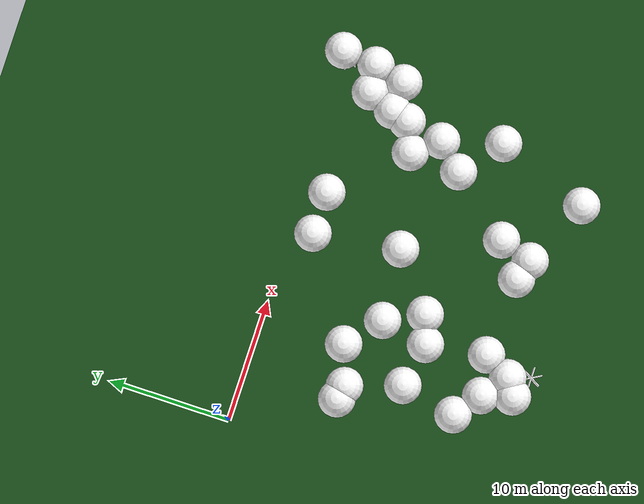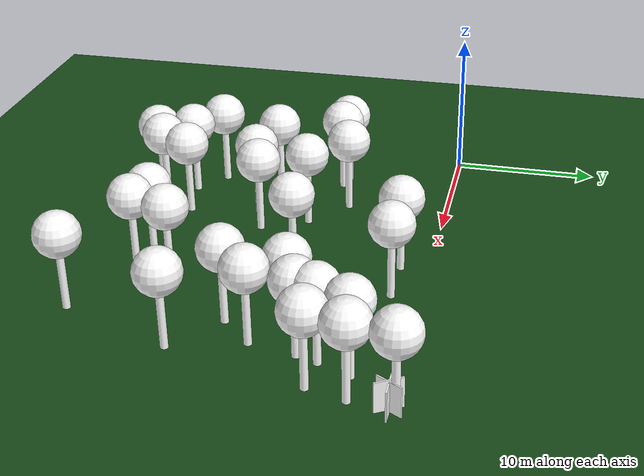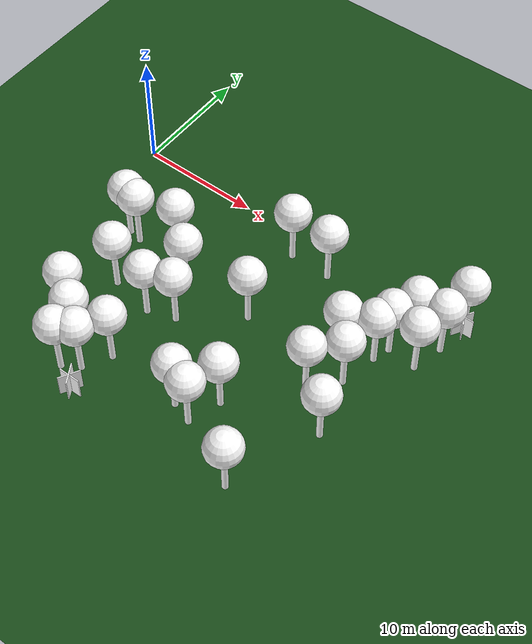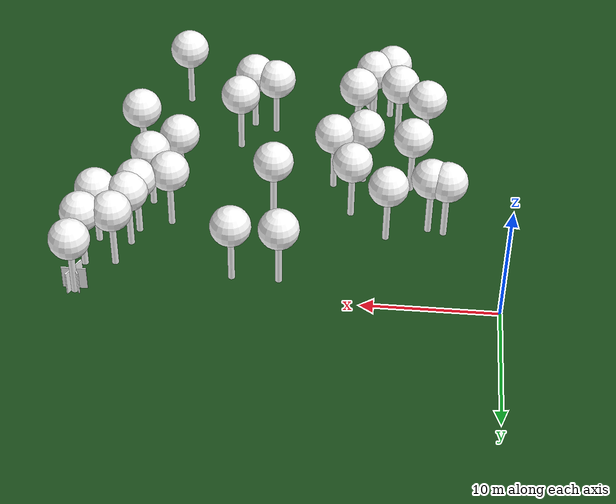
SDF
<sdf version="1.8">
 <world name="forest_world">
  <model name="tree_simple478">
   <static>1</static>
   <link name="link">
    <pose>0 0 0.1 0 -0 0</pose>
    <collision name="collision_trunk">
     <pose>0 0 2 0 -0 0</pose>
     <geometry><cylinder><radius>0.25</radius><length>4</length></cylinder></geometry>
    </collision>
    <collision name="collision_treetop">
     <pose>0 0 5.2 0 -0 0</pose>
     <geometry><sphere><radius>1.5</radius></sphere></geometry>
    </collision>
    <visual name="trunk">
     <pose>0 0 2 0 -0 0</pose>
     <geometry><cylinder><radius>0.25</radius><length>4</length></cylinder></geometry>
     <material>
      <ambient>0.5 0.5 0.5 1</ambient>
      <diffuse>1.0 1.0 1.0 1</diffuse>
      <specular>0.0 0.0 0.0 1</specular>
      <pbr>
       <metal>
        <albedo_map>../worlds/textures/tree_simple_trunk.jpg</albedo_map>
        <metalness>0.0</metalness>
        <roughness>0.8</roughness>
       </metal>
      </pbr>
     </material>
    </visual>
    <visual name="treetop">
     <pose>0 0 5.2 0 -0 0</pose>
     <geometry><sphere><radius>1.5</radius></sphere></geometry>
     <material>
      <ambient>0.5 0.5 0.5 1</ambient>
      <diffuse>1.0 1.0 1.0 1</diffuse>
      <specular>0.0 0.0 0.0 1</specular>
      <pbr>
       <metal>
        <albedo_map>../worlds/textures/tree_simple_treetop.jpg</albedo_map>
        <metalness>0.0</metalness>
        <roughness>0.9</roughness>
       </metal>
      </pbr>
     </material>
    </visual>
   </link>
   <pose>6.74093075138 -12.3162984353 0 0 -0 0</pose>
  </model>
  <model name="tree_simple463">
   <static>1</static>
   <link name="link">
    <pose>0 0 0.1 0 -0 0</pose>
    <collision name="collision_trunk">
     <pose>0 0 2 0 -0 0</pose>
     <geometry><cylinder><radius>0.25</radius><length>4</length></cylinder></geometry>
    </collision>
    <collision name="collision_treetop">
     <pose>0 0 5.2 0 -0 0</pose>
     <geometry><sphere><radius>1.5</radius></sphere></geometry>
    </collision>
    <visual name="trunk">
     <pose>0 0 2 0 -0 0</pose>
     <geometry><cylinder><radius>0.25</radius><length>4</length></cylinder></geometry>
     <material>
      <ambient>0.5 0.5 0.5 1</ambient>
      <diffuse>1.0 1.0 1.0 1</diffuse>
      <specular>0.0 0.0 0.0 1</specular>
      <pbr>
       <metal>
        <albedo_map>../worlds/textures/tree_simple_trunk.jpg</albedo_map>
        <metalness>0.0</metalness>
        <roughness>0.8</roughness>
       </metal>
      </pbr>
     </material>
    </visual>
    <visual name="treetop">
     <pose>0 0 5.2 0 -0 0</pose>
     <geometry><sphere><radius>1.5</radius></sphere></geometry>
     <material>
      <ambient>0.5 0.5 0.5 1</ambient>
      <diffuse>1.0 1.0 1.0 1</diffuse>
      <specular>0.0 0.0 0.0 1</specular>
      <pbr>
       <metal>
        <albedo_map>../worlds/textures/tree_simple_treetop.jpg</albedo_map>
        <metalness>0.0</metalness>
        <roughness>0.9</roughness>
       </metal>
      </pbr>
     </material>
    </visual>
   </link>
   <pose>4.14452898467 -7.71733475474 0 0 -0 0</pose>
  </model>
  <model name="tree_simple439">
   <static>1</static>
   <link name="link">
    <pose>0 0 0.1 0 -0 0</pose>
    <collision name="collision_trunk">
     <pose>0 0 2 0 -0 0</pose>
     <geometry><cylinder><radius>0.25</radius><length>4</length></cylinder></geometry>
    </collision>
    <collision name="collision_treetop">
     <pose>0 0 5.2 0 -0 0</pose>
     <geometry><sphere><radius>1.5</radius></sphere></geometry>
    </collision>
    <visual name="trunk">
     <pose>0 0 2 0 -0 0</pose>
     <geometry><cylinder><radius>0.25</radius><length>4</length></cylinder></geometry>
     <material>
      <ambient>0.5 0.5 0.5 1</ambient>
      <diffuse>1.0 1.0 1.0 1</diffuse>
      <specular>0.0 0.0 0.0 1</specular>
      <pbr>
       <metal>
        <albedo_map>../worlds/textures/tree_simple_trunk.jpg</albedo_map>
        <metalness>0.0</metalness>
        <roughness>0.8</roughness>
       </metal>
      </pbr>
     </material>
    </visual>
    <visual name="treetop">
     <pose>0 0 5.2 0 -0 0</pose>
     <geometry><sphere><radius>1.5</radius></sphere></geometry>
     <material>
      <ambient>0.5 0.5 0.5 1</ambient>
      <diffuse>1.0 1.0 1.0 1</diffuse>
      <specular>0.0 0.0 0.0 1</specular>
      <pbr>
       <metal>
        <albedo_map>../worlds/textures/tree_simple_treetop.jpg</albedo_map>
        <metalness>0.0</metalness>
        <roughness>0.9</roughness>
       </metal>
      </pbr>
     </material>
    </visual>
   </link>
   <pose>8.56501316053 -20.7640585998 0 0 -0 0</pose>
  </model>
  <model name="tree_simple432">
   <static>1</static>
   <link name="link">
    <pose>0 0 0.1 0 -0 0</pose>
    <collision name="collision_trunk">
     <pose>0 0 2 0 -0 0</pose>
     <geometry><cylinder><radius>0.25</radius><length>4</length></cylinder></geometry>
    </collision>
    <collision name="collision_treetop">
     <pose>0 0 5.2 0 -0 0</pose>
     <geometry><sphere><radius>1.5</radius></sphere></geometry>
    </collision>
    <visual name="trunk">
     <pose>0 0 2 0 -0 0</pose>
     <geometry><cylinder><radius>0.25</radius><length>4</length></cylinder></geometry>
     <material>
      <ambient>0.5 0.5 0.5 1</ambient>
      <diffuse>1.0 1.0 1.0 1</diffuse>
      <specular>0.0 0.0 0.0 1</specular>
      <pbr>
       <metal>
        <albedo_map>../worlds/textures/tree_simple_trunk.jpg</albedo_map>
        <metalness>0.0</metalness>
        <roughness>0.8</roughness>
       </metal>
      </pbr>
     </material>
    </visual>
    <visual name="treetop">
     <pose>0 0 5.2 0 -0 0</pose>
     <geometry><sphere><radius>1.5</radius></sphere></geometry>
     <material>
      <ambient>0.5 0.5 0.5 1</ambient>
      <diffuse>1.0 1.0 1.0 1</diffuse>
      <specular>0.0 0.0 0.0 1</specular>
      <pbr>
       <metal>
        <albedo_map>../worlds/textures/tree_simple_treetop.jpg</albedo_map>
        <metalness>0.0</metalness>
        <roughness>0.9</roughness>
       </metal>
      </pbr>
     </material>
    </visual>
   </link>
   <pose>8.39657738542 -6.88848549894 0 0 -0 0</pose>
  </model>
  <model name="tree_simple428">
   <static>1</static>
   <link name="link">
    <pose>0 0 0.1 0 -0 0</pose>
    <collision name="collision_trunk">
     <pose>0 0 2 0 -0 0</pose>
     <geometry><cylinder><radius>0.25</radius><length>4</length></cylinder></geometry>
    </collision>
    <collision name="collision_treetop">
     <pose>0 0 5.2 0 -0 0</pose>
     <geometry><sphere><radius>1.5</radius></sphere></geometry>
    </collision>
    <visual name="trunk">
     <pose>0 0 2 0 -0 0</pose>
     <geometry><cylinder><radius>0.25</radius><length>4</length></cylinder></geometry>
     <material>
      <ambient>0.5 0.5 0.5 1</ambient>
      <diffuse>1.0 1.0 1.0 1</diffuse>
      <specular>0.0 0.0 0.0 1</specular>
      <pbr>
       <metal>
        <albedo_map>../worlds/textures/tree_simple_trunk.jpg</albedo_map>
        <metalness>0.0</metalness>
        <roughness>0.8</roughness>
       </metal>
      </pbr>
     </material>
    </visual>
    <visual name="treetop">
     <pose>0 0 5.2 0 -0 0</pose>
     <geometry><sphere><radius>1.5</radius></sphere></geometry>
     <material>
      <ambient>0.5 0.5 0.5 1</ambient>
      <diffuse>1.0 1.0 1.0 1</diffuse>
      <specular>0.0 0.0 0.0 1</specular>
      <pbr>
       <metal>
        <albedo_map>../worlds/textures/tree_simple_treetop.jpg</albedo_map>
        <metalness>0.0</metalness>
        <roughness>0.9</roughness>
       </metal>
      </pbr>
     </material>
    </visual>
   </link>
   <pose>9.87663766252 -19.9509422297 0 0 -0 0</pose>
  </model>
  <model name="tree_simple394">
   <static>1</static>
   <link name="link">
    <pose>0 0 0.1 0 -0 0</pose>
    <collision name="collision_trunk">
     <pose>0 0 2 0 -0 0</pose>
     <geometry><cylinder><radius>0.25</radius><length>4</length></cylinder></geometry>
    </collision>
    <collision name="collision_treetop">
     <pose>0 0 5.2 0 -0 0</pose>
     <geometry><sphere><radius>1.5</radius></sphere></geometry>
    </collision>
    <visual name="trunk">
     <pose>0 0 2 0 -0 0</pose>
     <geometry><cylinder><radius>0.25</radius><length>4</length></cylinder></geometry>
     <material>
      <ambient>0.5 0.5 0.5 1</ambient>
      <diffuse>1.0 1.0 1.0 1</diffuse>
      <specular>0.0 0.0 0.0 1</specular>
      <pbr>
       <metal>
        <albedo_map>../worlds/textures/tree_simple_trunk.jpg</albedo_map>
        <metalness>0.0</metalness>
        <roughness>0.8</roughness>
       </metal>
      </pbr>
     </material>
    </visual>
    <visual name="treetop">
     <pose>0 0 5.2 0 -0 0</pose>
     <geometry><sphere><radius>1.5</radius></sphere></geometry>
     <material>
      <ambient>0.5 0.5 0.5 1</ambient>
      <diffuse>1.0 1.0 1.0 1</diffuse>
      <specular>0.0 0.0 0.0 1</specular>
      <pbr>
       <metal>
        <albedo_map>../worlds/textures/tree_simple_treetop.jpg</albedo_map>
        <metalness>0.0</metalness>
        <roughness>0.9</roughness>
       </metal>
      </pbr>
     </material>
    </visual>
   </link>
   <pose>26.6658652991 -6.19294115589 0 0 -0 0</pose>
  </model>
  <model name="tree_simple389">
   <static>1</static>
   <link name="link">
    <pose>0 0 0.1 0 -0 0</pose>
    <collision name="collision_trunk">
     <pose>0 0 2 0 -0 0</pose>
     <geometry><cylinder><radius>0.25</radius><length>4</length></cylinder></geometry>
    </collision>
    <collision name="collision_treetop">
     <pose>0 0 5.2 0 -0 0</pose>
     <geometry><sphere><radius>1.5</radius></sphere></geometry>
    </collision>
    <visual name="trunk">
     <pose>0 0 2 0 -0 0</pose>
     <geometry><cylinder><radius>0.25</radius><length>4</length></cylinder></geometry>
     <material>
      <ambient>0.5 0.5 0.5 1</ambient>
      <diffuse>1.0 1.0 1.0 1</diffuse>
      <specular>0.0 0.0 0.0 1</specular>
      <pbr>
       <metal>
        <albedo_map>../worlds/textures/tree_simple_trunk.jpg</albedo_map>
        <metalness>0.0</metalness>
        <roughness>0.8</roughness>
       </metal>
      </pbr>
     </material>
    </visual>
    <visual name="treetop">
     <pose>0 0 5.2 0 -0 0</pose>
     <geometry><sphere><radius>1.5</radius></sphere></geometry>
     <material>
      <ambient>0.5 0.5 0.5 1</ambient>
      <diffuse>1.0 1.0 1.0 1</diffuse>
      <specular>0.0 0.0 0.0 1</specular>
      <pbr>
       <metal>
        <albedo_map>../worlds/textures/tree_simple_treetop.jpg</albedo_map>
        <metalness>0.0</metalness>
        <roughness>0.9</roughness>
       </metal>
      </pbr>
     </material>
    </visual>
   </link>
   <pose>12.5934036343 -12.2598342596 0 0 -0 0</pose>
  </model>
  <model name="tree_simple327">
   <static>1</static>
   <link name="link">
    <pose>0 0 0.1 0 -0 0</pose>
    <collision name="collision_trunk">
     <pose>0 0 2 0 -0 0</pose>
     <geometry><cylinder><radius>0.25</radius><length>4</length></cylinder></geometry>
    </collision>
    <collision name="collision_treetop">
     <pose>0 0 5.2 0 -0 0</pose>
     <geometry><sphere><radius>1.5</radius></sphere></geometry>
    </collision>
    <visual name="trunk">
     <pose>0 0 2 0 -0 0</pose>
     <geometry><cylinder><radius>0.25</radius><length>4</length></cylinder></geometry>
     <material>
      <ambient>0.5 0.5 0.5 1</ambient>
      <diffuse>1.0 1.0 1.0 1</diffuse>
      <specular>0.0 0.0 0.0 1</specular>
      <pbr>
       <metal>
        <albedo_map>../worlds/textures/tree_simple_trunk.jpg</albedo_map>
        <metalness>0.0</metalness>
        <roughness>0.8</roughness>
       </metal>
      </pbr>
     </material>
    </visual>
    <visual name="treetop">
     <pose>0 0 5.2 0 -0 0</pose>
     <geometry><sphere><radius>1.5</radius></sphere></geometry>
     <material>
      <ambient>0.5 0.5 0.5 1</ambient>
      <diffuse>1.0 1.0 1.0 1</diffuse>
      <specular>0.0 0.0 0.0 1</specular>
      <pbr>
       <metal>
        <albedo_map>../worlds/textures/tree_simple_treetop.jpg</albedo_map>
        <metalness>0.0</metalness>
        <roughness>0.9</roughness>
       </metal>
      </pbr>
     </material>
    </visual>
   </link>
   <pose>5.78438571624 -16.7663148306 0 0 -0 0</pose>
  </model>
  <model name="tree_simple316">
   <static>1</static>
   <link name="link">
    <pose>0 0 0.1 0 -0 0</pose>
    <collision name="collision_trunk">
     <pose>0 0 2 0 -0 0</pose>
     <geometry><cylinder><radius>0.25</radius><length>4</length></cylinder></geometry>
    </collision>
    <collision name="collision_treetop">
     <pose>0 0 5.2 0 -0 0</pose>
     <geometry><sphere><radius>1.5</radius></sphere></geometry>
    </collision>
    <visual name="trunk">
     <pose>0 0 2 0 -0 0</pose>
     <geometry><cylinder><radius>0.25</radius><length>4</length></cylinder></geometry>
     <material>
      <ambient>0.5 0.5 0.5 1</ambient>
      <diffuse>1.0 1.0 1.0 1</diffuse>
      <specular>0.0 0.0 0.0 1</specular>
      <pbr>
       <metal>
        <albedo_map>../worlds/textures/tree_simple_trunk.jpg</albedo_map>
        <metalness>0.0</metalness>
        <roughness>0.8</roughness>
       </metal>
      </pbr>
     </material>
    </visual>
    <visual name="treetop">
     <pose>0 0 5.2 0 -0 0</pose>
     <geometry><sphere><radius>1.5</radius></sphere></geometry>
     <material>
      <ambient>0.5 0.5 0.5 1</ambient>
      <diffuse>1.0 1.0 1.0 1</diffuse>
      <specular>0.0 0.0 0.0 1</specular>
      <pbr>
       <metal>
        <albedo_map>../worlds/textures/tree_simple_treetop.jpg</albedo_map>
        <metalness>0.0</metalness>
        <roughness>0.9</roughness>
       </metal>
      </pbr>
     </material>
    </visual>
   </link>
   <pose>19.3529599153 -1.91242662106 0 0 -0 0</pose>
  </model>
  <model name="tree_simple314">
   <static>1</static>
   <link name="link">
    <pose>0 0 0.1 0 -0 0</pose>
    <collision name="collision_trunk">
     <pose>0 0 2 0 -0 0</pose>
     <geometry><cylinder><radius>0.25</radius><length>4</length></cylinder></geometry>
    </collision>
    <collision name="collision_treetop">
     <pose>0 0 5.2 0 -0 0</pose>
     <geometry><sphere><radius>1.5</radius></sphere></geometry>
    </collision>
    <visual name="trunk">
     <pose>0 0 2 0 -0 0</pose>
     <geometry><cylinder><radius>0.25</radius><length>4</length></cylinder></geometry>
     <material>
      <ambient>0.5 0.5 0.5 1</ambient>
      <diffuse>1.0 1.0 1.0 1</diffuse>
      <specular>0.0 0.0 0.0 1</specular>
      <pbr>
       <metal>
        <albedo_map>../worlds/textures/tree_simple_trunk.jpg</albedo_map>
        <metalness>0.0</metalness>
        <roughness>0.8</roughness>
       </metal>
      </pbr>
     </material>
    </visual>
    <visual name="treetop">
     <pose>0 0 5.2 0 -0 0</pose>
     <geometry><sphere><radius>1.5</radius></sphere></geometry>
     <material>
      <ambient>0.5 0.5 0.5 1</ambient>
      <diffuse>1.0 1.0 1.0 1</diffuse>
      <specular>0.0 0.0 0.0 1</specular>
      <pbr>
       <metal>
        <albedo_map>../worlds/textures/tree_simple_treetop.jpg</albedo_map>
        <metalness>0.0</metalness>
        <roughness>0.9</roughness>
       </metal>
      </pbr>
     </material>
    </visual>
   </link>
   <pose>15.9305866253 -1.88175491407 0 0 -0 0</pose>
  </model>
  <model name="tree_simple309">
   <static>1</static>
   <link name="link">
    <pose>0 0 0.1 0 -0 0</pose>
    <collision name="collision_trunk">
     <pose>0 0 2 0 -0 0</pose>
     <geometry><cylinder><radius>0.25</radius><length>4</length></cylinder></geometry>
    </collision>
    <collision name="collision_treetop">
     <pose>0 0 5.2 0 -0 0</pose>
     <geometry><sphere><radius>1.5</radius></sphere></geometry>
    </collision>
    <visual name="trunk">
     <pose>0 0 2 0 -0 0</pose>
     <geometry><cylinder><radius>0.25</radius><length>4</length></cylinder></geometry>
     <material>
      <ambient>0.5 0.5 0.5 1</ambient>
      <diffuse>1.0 1.0 1.0 1</diffuse>
      <specular>0.0 0.0 0.0 1</specular>
      <pbr>
       <metal>
        <albedo_map>../worlds/textures/tree_simple_trunk.jpg</albedo_map>
        <metalness>0.0</metalness>
        <roughness>0.8</roughness>
       </metal>
      </pbr>
     </material>
    </visual>
    <visual name="treetop">
     <pose>0 0 5.2 0 -0 0</pose>
     <geometry><sphere><radius>1.5</radius></sphere></geometry>
     <material>
      <ambient>0.5 0.5 0.5 1</ambient>
      <diffuse>1.0 1.0 1.0 1</diffuse>
      <specular>0.0 0.0 0.0 1</specular>
      <pbr>
       <metal>
        <albedo_map>../worlds/textures/tree_simple_treetop.jpg</albedo_map>
        <metalness>0.0</metalness>
        <roughness>0.9</roughness>
       </metal>
      </pbr>
     </material>
    </visual>
   </link>
   <pose>19.1748935323 -18.8000539767 0 0 -0 0</pose>
  </model>
  <model name="tree_simple301">
   <static>1</static>
   <link name="link">
    <pose>0 0 0.1 0 -0 0</pose>
    <collision name="collision_trunk">
     <pose>0 0 2 0 -0 0</pose>
     <geometry><cylinder><radius>0.25</radius><length>4</length></cylinder></geometry>
    </collision>
    <collision name="collision_treetop">
     <pose>0 0 5.2 0 -0 0</pose>
     <geometry><sphere><radius>1.5</radius></sphere></geometry>
    </collision>
    <visual name="trunk">
     <pose>0 0 2 0 -0 0</pose>
     <geometry><cylinder><radius>0.25</radius><length>4</length></cylinder></geometry>
     <material>
      <ambient>0.5 0.5 0.5 1</ambient>
      <diffuse>1.0 1.0 1.0 1</diffuse>
      <specular>0.0 0.0 0.0 1</specular>
      <pbr>
       <metal>
        <albedo_map>../worlds/textures/tree_simple_trunk.jpg</albedo_map>
        <metalness>0.0</metalness>
        <roughness>0.8</roughness>
       </metal>
      </pbr>
     </material>
    </visual>
    <visual name="treetop">
     <pose>0 0 5.2 0 -0 0</pose>
     <geometry><sphere><radius>1.5</radius></sphere></geometry>
     <material>
      <ambient>0.5 0.5 0.5 1</ambient>
      <diffuse>1.0 1.0 1.0 1</diffuse>
      <specular>0.0 0.0 0.0 1</specular>
      <pbr>
       <metal>
        <albedo_map>../worlds/textures/tree_simple_treetop.jpg</albedo_map>
        <metalness>0.0</metalness>
        <roughness>0.9</roughness>
       </metal>
      </pbr>
     </material>
    </visual>
   </link>
   <pose>27.965012063 -2.69695305694 0 0 -0 0</pose>
  </model>
  <model name="tree_simple292">
   <static>1</static>
   <link name="link">
    <pose>0 0 0.1 0 -0 0</pose>
    <collision name="collision_trunk">
     <pose>0 0 2 0 -0 0</pose>
     <geometry><cylinder><radius>0.25</radius><length>4</length></cylinder></geometry>
    </collision>
    <collision name="collision_treetop">
     <pose>0 0 5.2 0 -0 0</pose>
     <geometry><sphere><radius>1.5</radius></sphere></geometry>
    </collision>
    <visual name="trunk">
     <pose>0 0 2 0 -0 0</pose>
     <geometry><cylinder><radius>0.25</radius><length>4</length></cylinder></geometry>
     <material>
      <ambient>0.5 0.5 0.5 1</ambient>
      <diffuse>1.0 1.0 1.0 1</diffuse>
      <specular>0.0 0.0 0.0 1</specular>
      <pbr>
       <metal>
        <albedo_map>../worlds/textures/tree_simple_trunk.jpg</albedo_map>
        <metalness>0.0</metalness>
        <roughness>0.8</roughness>
       </metal>
      </pbr>
     </material>
    </visual>
    <visual name="treetop">
     <pose>0 0 5.2 0 -0 0</pose>
     <geometry><sphere><radius>1.5</radius></sphere></geometry>
     <material>
      <ambient>0.5 0.5 0.5 1</ambient>
      <diffuse>1.0 1.0 1.0 1</diffuse>
      <specular>0.0 0.0 0.0 1</specular>
      <pbr>
       <metal>
        <albedo_map>../worlds/textures/tree_simple_treetop.jpg</albedo_map>
        <metalness>0.0</metalness>
        <roughness>0.9</roughness>
       </metal>
      </pbr>
     </material>
    </visual>
   </link>
   <pose>16.8917664362 -8.8290409333 0 0 -0 0</pose>
  </model>
  <model name="tree_simple290">
   <static>1</static>
   <link name="link">
    <pose>0 0 0.1 0 -0 0</pose>
    <collision name="collision_trunk">
     <pose>0 0 2 0 -0 0</pose>
     <geometry><cylinder><radius>0.25</radius><length>4</length></cylinder></geometry>
    </collision>
    <collision name="collision_treetop">
     <pose>0 0 5.2 0 -0 0</pose>
     <geometry><sphere><radius>1.5</radius></sphere></geometry>
    </collision>
    <visual name="trunk">
     <pose>0 0 2 0 -0 0</pose>
     <geometry><cylinder><radius>0.25</radius><length>4</length></cylinder></geometry>
     <material>
      <ambient>0.5 0.5 0.5 1</ambient>
      <diffuse>1.0 1.0 1.0 1</diffuse>
      <specular>0.0 0.0 0.0 1</specular>
      <pbr>
       <metal>
        <albedo_map>../worlds/textures/tree_simple_trunk.jpg</albedo_map>
        <metalness>0.0</metalness>
        <roughness>0.8</roughness>
       </metal>
      </pbr>
     </material>
    </visual>
    <visual name="treetop">
     <pose>0 0 5.2 0 -0 0</pose>
     <geometry><sphere><radius>1.5</radius></sphere></geometry>
     <material>
      <ambient>0.5 0.5 0.5 1</ambient>
      <diffuse>1.0 1.0 1.0 1</diffuse>
      <specular>0.0 0.0 0.0 1</specular>
      <pbr>
       <metal>
        <albedo_map>../worlds/textures/tree_simple_treetop.jpg</albedo_map>
        <metalness>0.0</metalness>
        <roughness>0.9</roughness>
       </metal>
      </pbr>
     </material>
    </visual>
   </link>
   <pose>27.3398552582 -13.9618363734 0 0 -0 0</pose>
  </model>
  <model name="tree_simple288">
   <static>1</static>
   <link name="link">
    <pose>0 0 0.1 0 -0 0</pose>
    <collision name="collision_trunk">
     <pose>0 0 2 0 -0 0</pose>
     <geometry><cylinder><radius>0.25</radius><length>4</length></cylinder></geometry>
    </collision>
    <collision name="collision_treetop">
     <pose>0 0 5.2 0 -0 0</pose>
     <geometry><sphere><radius>1.5</radius></sphere></geometry>
    </collision>
    <visual name="trunk">
     <pose>0 0 2 0 -0 0</pose>
     <geometry><cylinder><radius>0.25</radius><length>4</length></cylinder></geometry>
     <material>
      <ambient>0.5 0.5 0.5 1</ambient>
      <diffuse>1.0 1.0 1.0 1</diffuse>
      <specular>0.0 0.0 0.0 1</specular>
      <pbr>
       <metal>
        <albedo_map>../worlds/textures/tree_simple_trunk.jpg</albedo_map>
        <metalness>0.0</metalness>
        <roughness>0.8</roughness>
       </metal>
      </pbr>
     </material>
    </visual>
    <visual name="treetop">
     <pose>0 0 5.2 0 -0 0</pose>
     <geometry><sphere><radius>1.5</radius></sphere></geometry>
     <material>
      <ambient>0.5 0.5 0.5 1</ambient>
      <diffuse>1.0 1.0 1.0 1</diffuse>
      <specular>0.0 0.0 0.0 1</specular>
      <pbr>
       <metal>
        <albedo_map>../worlds/textures/tree_simple_treetop.jpg</albedo_map>
        <metalness>0.0</metalness>
        <roughness>0.9</roughness>
       </metal>
      </pbr>
     </material>
    </visual>
   </link>
   <pose>27.0972467775 -4.81040951666 0 0 -0 0</pose>
  </model>
  <model name="tree_simple267">
   <static>1</static>
   <link name="link">
    <pose>0 0 0.1 0 -0 0</pose>
    <collision name="collision_trunk">
     <pose>0 0 2 0 -0 0</pose>
     <geometry><cylinder><radius>0.25</radius><length>4</length></cylinder></geometry>
    </collision>
    <collision name="collision_treetop">
     <pose>0 0 5.2 0 -0 0</pose>
     <geometry><sphere><radius>1.5</radius></sphere></geometry>
    </collision>
    <visual name="trunk">
     <pose>0 0 2 0 -0 0</pose>
     <geometry><cylinder><radius>0.25</radius><length>4</length></cylinder></geometry>
     <material>
      <ambient>0.5 0.5 0.5 1</ambient>
      <diffuse>1.0 1.0 1.0 1</diffuse>
      <specular>0.0 0.0 0.0 1</specular>
      <pbr>
       <metal>
        <albedo_map>../worlds/textures/tree_simple_trunk.jpg</albedo_map>
        <metalness>0.0</metalness>
        <roughness>0.8</roughness>
       </metal>
      </pbr>
     </material>
    </visual>
    <visual name="treetop">
     <pose>0 0 5.2 0 -0 0</pose>
     <geometry><sphere><radius>1.5</radius></sphere></geometry>
     <material>
      <ambient>0.5 0.5 0.5 1</ambient>
      <diffuse>1.0 1.0 1.0 1</diffuse>
      <specular>0.0 0.0 0.0 1</specular>
      <pbr>
       <metal>
        <albedo_map>../worlds/textures/tree_simple_treetop.jpg</albedo_map>
        <metalness>0.0</metalness>
        <roughness>0.9</roughness>
       </metal>
      </pbr>
     </material>
    </visual>
   </link>
   <pose>26.0311147771 -9.256788114 0 0 -0 0</pose>
  </model>
  <model name="tree_simple211">
   <static>1</static>
   <link name="link">
    <pose>0 0 0.1 0 -0 0</pose>
    <collision name="collision_trunk">
     <pose>0 0 2 0 -0 0</pose>
     <geometry><cylinder><radius>0.25</radius><length>4</length></cylinder></geometry>
    </collision>
    <collision name="collision_treetop">
     <pose>0 0 5.2 0 -0 0</pose>
     <geometry><sphere><radius>1.5</radius></sphere></geometry>
    </collision>
    <visual name="trunk">
     <pose>0 0 2 0 -0 0</pose>
     <geometry><cylinder><radius>0.25</radius><length>4</length></cylinder></geometry>
     <material>
      <ambient>0.5 0.5 0.5 1</ambient>
      <diffuse>1.0 1.0 1.0 1</diffuse>
      <specular>0.0 0.0 0.0 1</specular>
      <pbr>
       <metal>
        <albedo_map>../worlds/textures/tree_simple_trunk.jpg</albedo_map>
        <metalness>0.0</metalness>
        <roughness>0.8</roughness>
       </metal>
      </pbr>
     </material>
    </visual>
    <visual name="treetop">
     <pose>0 0 5.2 0 -0 0</pose>
     <geometry><sphere><radius>1.5</radius></sphere></geometry>
     <material>
      <ambient>0.5 0.5 0.5 1</ambient>
      <diffuse>1.0 1.0 1.0 1</diffuse>
      <specular>0.0 0.0 0.0 1</specular>
      <pbr>
       <metal>
        <albedo_map>../worlds/textures/tree_simple_treetop.jpg</albedo_map>
        <metalness>0.0</metalness>
        <roughness>0.9</roughness>
       </metal>
      </pbr>
     </material>
    </visual>
   </link>
   <pose>24.1088627432 -11.2741546154 0 0 -0 0</pose>
  </model>
  <model name="tree_simple191">
   <static>1</static>
   <link name="link">
    <pose>0 0 0.1 0 -0 0</pose>
    <collision name="collision_trunk">
     <pose>0 0 2 0 -0 0</pose>
     <geometry><cylinder><radius>0.25</radius><length>4</length></cylinder></geometry>
    </collision>
    <collision name="collision_treetop">
     <pose>0 0 5.2 0 -0 0</pose>
     <geometry><sphere><radius>1.5</radius></sphere></geometry>
    </collision>
    <visual name="trunk">
     <pose>0 0 2 0 -0 0</pose>
     <geometry><cylinder><radius>0.25</radius><length>4</length></cylinder></geometry>
     <material>
      <ambient>0.5 0.5 0.5 1</ambient>
      <diffuse>1.0 1.0 1.0 1</diffuse>
      <specular>0.0 0.0 0.0 1</specular>
      <pbr>
       <metal>
        <albedo_map>../worlds/textures/tree_simple_trunk.jpg</albedo_map>
        <metalness>0.0</metalness>
        <roughness>0.8</roughness>
       </metal>
      </pbr>
     </material>
    </visual>
    <visual name="treetop">
     <pose>0 0 5.2 0 -0 0</pose>
     <geometry><sphere><radius>1.5</radius></sphere></geometry>
     <material>
      <ambient>0.5 0.5 0.5 1</ambient>
      <diffuse>1.0 1.0 1.0 1</diffuse>
      <specular>0.0 0.0 0.0 1</specular>
      <pbr>
       <metal>
        <albedo_map>../worlds/textures/tree_simple_treetop.jpg</albedo_map>
        <metalness>0.0</metalness>
        <roughness>0.9</roughness>
       </metal>
      </pbr>
     </material>
    </visual>
   </link>
   <pose>7.88783183775 -18.3803184039 0 0 -0 0</pose>
  </model>
  <model name="tree_simple178">
   <static>1</static>
   <link name="link">
    <pose>0 0 0.1 0 -0 0</pose>
    <collision name="collision_trunk">
     <pose>0 0 2 0 -0 0</pose>
     <geometry><cylinder><radius>0.25</radius><length>4</length></cylinder></geometry>
    </collision>
    <collision name="collision_treetop">
     <pose>0 0 5.2 0 -0 0</pose>
     <geometry><sphere><radius>1.5</radius></sphere></geometry>
    </collision>
    <visual name="trunk">
     <pose>0 0 2 0 -0 0</pose>
     <geometry><cylinder><radius>0.25</radius><length>4</length></cylinder></geometry>
     <material>
      <ambient>0.5 0.5 0.5 1</ambient>
      <diffuse>1.0 1.0 1.0 1</diffuse>
      <specular>0.0 0.0 0.0 1</specular>
      <pbr>
       <metal>
        <albedo_map>../worlds/textures/tree_simple_trunk.jpg</albedo_map>
        <metalness>0.0</metalness>
        <roughness>0.8</roughness>
       </metal>
      </pbr>
     </material>
    </visual>
    <visual name="treetop">
     <pose>0 0 5.2 0 -0 0</pose>
     <geometry><sphere><radius>1.5</radius></sphere></geometry>
     <material>
      <ambient>0.5 0.5 0.5 1</ambient>
      <diffuse>1.0 1.0 1.0 1</diffuse>
      <specular>0.0 0.0 0.0 1</specular>
      <pbr>
       <metal>
        <albedo_map>../worlds/textures/tree_simple_treetop.jpg</albedo_map>
        <metalness>0.0</metalness>
        <roughness>0.9</roughness>
       </metal>
      </pbr>
     </material>
    </visual>
   </link>
   <pose>24.3791750449 -7.18218424398 0 0 -0 0</pose>
  </model>
  <model name="tree_simple157">
   <static>1</static>
   <link name="link">
    <pose>0 0 0.1 0 -0 0</pose>
    <collision name="collision_trunk">
     <pose>0 0 2 0 -0 0</pose>
     <geometry><cylinder><radius>0.25</radius><length>4</length></cylinder></geometry>
    </collision>
    <collision name="collision_treetop">
     <pose>0 0 5.2 0 -0 0</pose>
     <geometry><sphere><radius>1.5</radius></sphere></geometry>
    </collision>
    <visual name="trunk">
     <pose>0 0 2 0 -0 0</pose>
     <geometry><cylinder><radius>0.25</radius><length>4</length></cylinder></geometry>
     <material>
      <ambient>0.5 0.5 0.5 1</ambient>
      <diffuse>1.0 1.0 1.0 1</diffuse>
      <specular>0.0 0.0 0.0 1</specular>
      <pbr>
       <metal>
        <albedo_map>../worlds/textures/tree_simple_trunk.jpg</albedo_map>
        <metalness>0.0</metalness>
        <roughness>0.8</roughness>
       </metal>
      </pbr>
     </material>
    </visual>
    <visual name="treetop">
     <pose>0 0 5.2 0 -0 0</pose>
     <geometry><sphere><radius>1.5</radius></sphere></geometry>
     <material>
      <ambient>0.5 0.5 0.5 1</ambient>
      <diffuse>1.0 1.0 1.0 1</diffuse>
      <specular>0.0 0.0 0.0 1</specular>
      <pbr>
       <metal>
        <albedo_map>../worlds/textures/tree_simple_treetop.jpg</albedo_map>
        <metalness>0.0</metalness>
        <roughness>0.9</roughness>
       </metal>
      </pbr>
     </material>
    </visual>
   </link>
   <pose>17.4643259264 -18.2232751505 0 0 -0 0</pose>
  </model>
  <model name="tree_simple156">
   <static>1</static>
   <link name="link">
    <pose>0 0 0.1 0 -0 0</pose>
    <collision name="collision_trunk">
     <pose>0 0 2 0 -0 0</pose>
     <geometry><cylinder><radius>0.25</radius><length>4</length></cylinder></geometry>
    </collision>
    <collision name="collision_treetop">
     <pose>0 0 5.2 0 -0 0</pose>
     <geometry><sphere><radius>1.5</radius></sphere></geometry>
    </collision>
    <visual name="trunk">
     <pose>0 0 2 0 -0 0</pose>
     <geometry><cylinder><radius>0.25</radius><length>4</length></cylinder></geometry>
     <material>
      <ambient>0.5 0.5 0.5 1</ambient>
      <diffuse>1.0 1.0 1.0 1</diffuse>
      <specular>0.0 0.0 0.0 1</specular>
      <pbr>
       <metal>
        <albedo_map>../worlds/textures/tree_simple_trunk.jpg</albedo_map>
        <metalness>0.0</metalness>
        <roughness>0.8</roughness>
       </metal>
      </pbr>
     </material>
    </visual>
    <visual name="treetop">
     <pose>0 0 5.2 0 -0 0</pose>
     <geometry><sphere><radius>1.5</radius></sphere></geometry>
     <material>
      <ambient>0.5 0.5 0.5 1</ambient>
      <diffuse>1.0 1.0 1.0 1</diffuse>
      <specular>0.0 0.0 0.0 1</specular>
      <pbr>
       <metal>
        <albedo_map>../worlds/textures/tree_simple_treetop.jpg</albedo_map>
        <metalness>0.0</metalness>
        <roughness>0.9</roughness>
       </metal>
      </pbr>
     </material>
    </visual>
   </link>
   <pose>20.0356149828 -16.1600287231 0 0 -0 0</pose>
  </model>
  <model name="tree_simple124">
   <static>1</static>
   <link name="link">
    <pose>0 0 0.1 0 -0 0</pose>
    <collision name="collision_trunk">
     <pose>0 0 2 0 -0 0</pose>
     <geometry><cylinder><radius>0.25</radius><length>4</length></cylinder></geometry>
    </collision>
    <collision name="collision_treetop">
     <pose>0 0 5.2 0 -0 0</pose>
     <geometry><sphere><radius>1.5</radius></sphere></geometry>
    </collision>
    <visual name="trunk">
     <pose>0 0 2 0 -0 0</pose>
     <geometry><cylinder><radius>0.25</radius><length>4</length></cylinder></geometry>
     <material>
      <ambient>0.5 0.5 0.5 1</ambient>
      <diffuse>1.0 1.0 1.0 1</diffuse>
      <specular>0.0 0.0 0.0 1</specular>
      <pbr>
       <metal>
        <albedo_map>../worlds/textures/tree_simple_trunk.jpg</albedo_map>
        <metalness>0.0</metalness>
        <roughness>0.8</roughness>
       </metal>
      </pbr>
     </material>
    </visual>
    <visual name="treetop">
     <pose>0 0 5.2 0 -0 0</pose>
     <geometry><sphere><radius>1.5</radius></sphere></geometry>
     <material>
      <ambient>0.5 0.5 0.5 1</ambient>
      <diffuse>1.0 1.0 1.0 1</diffuse>
      <specular>0.0 0.0 0.0 1</specular>
      <pbr>
       <metal>
        <albedo_map>../worlds/textures/tree_simple_treetop.jpg</albedo_map>
        <metalness>0.0</metalness>
        <roughness>0.9</roughness>
       </metal>
      </pbr>
     </material>
    </visual>
   </link>
   <pose>5.29940018808 -7.97080739541 0 0 -0 0</pose>
  </model>
  <model name="tree_simple120">
   <static>1</static>
   <link name="link">
    <pose>0 0 0.1 0 -0 0</pose>
    <collision name="collision_trunk">
     <pose>0 0 2 0 -0 0</pose>
     <geometry><cylinder><radius>0.25</radius><length>4</length></cylinder></geometry>
    </collision>
    <collision name="collision_treetop">
     <pose>0 0 5.2 0 -0 0</pose>
     <geometry><sphere><radius>1.5</radius></sphere></geometry>
    </collision>
    <visual name="trunk">
     <pose>0 0 2 0 -0 0</pose>
     <geometry><cylinder><radius>0.25</radius><length>4</length></cylinder></geometry>
     <material>
      <ambient>0.5 0.5 0.5 1</ambient>
      <diffuse>1.0 1.0 1.0 1</diffuse>
      <specular>0.0 0.0 0.0 1</specular>
      <pbr>
       <metal>
        <albedo_map>../worlds/textures/tree_simple_trunk.jpg</albedo_map>
        <metalness>0.0</metalness>
        <roughness>0.8</roughness>
       </metal>
      </pbr>
     </material>
    </visual>
    <visual name="treetop">
     <pose>0 0 5.2 0 -0 0</pose>
     <geometry><sphere><radius>1.5</radius></sphere></geometry>
     <material>
      <ambient>0.5 0.5 0.5 1</ambient>
      <diffuse>1.0 1.0 1.0 1</diffuse>
      <specular>0.0 0.0 0.0 1</specular>
      <pbr>
       <metal>
        <albedo_map>../worlds/textures/tree_simple_treetop.jpg</albedo_map>
        <metalness>0.0</metalness>
        <roughness>0.9</roughness>
       </metal>
      </pbr>
     </material>
    </visual>
   </link>
   <pose>29.4958477129 -4.98151152309 0 0 -0 0</pose>
  </model>
  <model name="tree_simple101">
   <static>1</static>
   <link name="link">
    <pose>0 0 0.1 0 -0 0</pose>
    <collision name="collision_trunk">
     <pose>0 0 2 0 -0 0</pose>
     <geometry><cylinder><radius>0.25</radius><length>4</length></cylinder></geometry>
    </collision>
    <collision name="collision_treetop">
     <pose>0 0 5.2 0 -0 0</pose>
     <geometry><sphere><radius>1.5</radius></sphere></geometry>
    </collision>
    <visual name="trunk">
     <pose>0 0 2 0 -0 0</pose>
     <geometry><cylinder><radius>0.25</radius><length>4</length></cylinder></geometry>
     <material>
      <ambient>0.5 0.5 0.5 1</ambient>
      <diffuse>1.0 1.0 1.0 1</diffuse>
      <specular>0.0 0.0 0.0 1</specular>
      <pbr>
       <metal>
        <albedo_map>../worlds/textures/tree_simple_trunk.jpg</albedo_map>
        <metalness>0.0</metalness>
        <roughness>0.8</roughness>
       </metal>
      </pbr>
     </material>
    </visual>
    <visual name="treetop">
     <pose>0 0 5.2 0 -0 0</pose>
     <geometry><sphere><radius>1.5</radius></sphere></geometry>
     <material>
      <ambient>0.5 0.5 0.5 1</ambient>
      <diffuse>1.0 1.0 1.0 1</diffuse>
      <specular>0.0 0.0 0.0 1</specular>
      <pbr>
       <metal>
        <albedo_map>../worlds/textures/tree_simple_treetop.jpg</albedo_map>
        <metalness>0.0</metalness>
        <roughness>0.9</roughness>
       </metal>
      </pbr>
     </material>
    </visual>
   </link>
   <pose>30.4497487196 0.325840967223 0 0 -0 0</pose>
  </model>
  <model name="tree_simple80">
   <static>1</static>
   <link name="link">
    <pose>0 0 0.1 0 -0 0</pose>
    <collision name="collision_trunk">
     <pose>0 0 2 0 -0 0</pose>
     <geometry><cylinder><radius>0.25</radius><length>4</length></cylinder></geometry>
    </collision>
    <collision name="collision_treetop">
     <pose>0 0 5.2 0 -0 0</pose>
     <geometry><sphere><radius>1.5</radius></sphere></geometry>
    </collision>
    <visual name="trunk">
     <pose>0 0 2 0 -0 0</pose>
     <geometry><cylinder><radius>0.25</radius><length>4</length></cylinder></geometry>
     <material>
      <ambient>0.5 0.5 0.5 1</ambient>
      <diffuse>1.0 1.0 1.0 1</diffuse>
      <specular>0.0 0.0 0.0 1</specular>
      <pbr>
       <metal>
        <albedo_map>../worlds/textures/tree_simple_trunk.jpg</albedo_map>
        <metalness>0.0</metalness>
        <roughness>0.8</roughness>
       </metal>
      </pbr>
     </material>
    </visual>
    <visual name="treetop">
     <pose>0 0 5.2 0 -0 0</pose>
     <geometry><sphere><radius>1.5</radius></sphere></geometry>
     <material>
      <ambient>0.5 0.5 0.5 1</ambient>
      <diffuse>1.0 1.0 1.0 1</diffuse>
      <specular>0.0 0.0 0.0 1</specular>
      <pbr>
       <metal>
        <albedo_map>../worlds/textures/tree_simple_treetop.jpg</albedo_map>
        <metalness>0.0</metalness>
        <roughness>0.9</roughness>
       </metal>
      </pbr>
     </material>
    </visual>
   </link>
   <pose>11.0693190469 -17.8172800913 0 0 -0 0</pose>
  </model>
  <model name="tree_simple70">
   <static>1</static>
   <link name="link">
    <pose>0 0 0.1 0 -0 0</pose>
    <collision name="collision_trunk">
     <pose>0 0 2 0 -0 0</pose>
     <geometry><cylinder><radius>0.25</radius><length>4</length></cylinder></geometry>
    </collision>
    <collision name="collision_treetop">
     <pose>0 0 5.2 0 -0 0</pose>
     <geometry><sphere><radius>1.5</radius></sphere></geometry>
    </collision>
    <visual name="trunk">
     <pose>0 0 2 0 -0 0</pose>
     <geometry><cylinder><radius>0.25</radius><length>4</length></cylinder></geometry>
     <material>
      <ambient>0.5 0.5 0.5 1</ambient>
      <diffuse>1.0 1.0 1.0 1</diffuse>
      <specular>0.0 0.0 0.0 1</specular>
      <pbr>
       <metal>
        <albedo_map>../worlds/textures/tree_simple_trunk.jpg</albedo_map>
        <metalness>0.0</metalness>
        <roughness>0.8</roughness>
       </metal>
      </pbr>
     </material>
    </visual>
    <visual name="treetop">
     <pose>0 0 5.2 0 -0 0</pose>
     <geometry><sphere><radius>1.5</radius></sphere></geometry>
     <material>
      <ambient>0.5 0.5 0.5 1</ambient>
      <diffuse>1.0 1.0 1.0 1</diffuse>
      <specular>0.0 0.0 0.0 1</specular>
      <pbr>
       <metal>
        <albedo_map>../worlds/textures/tree_simple_treetop.jpg</albedo_map>
        <metalness>0.0</metalness>
        <roughness>0.9</roughness>
       </metal>
      </pbr>
     </material>
    </visual>
   </link>
   <pose>30.1542629043 -2.46185450146 0 0 -0 0</pose>
  </model>
  <model name="tree_simple61">
   <static>1</static>
   <link name="link">
    <pose>0 0 0.1 0 -0 0</pose>
    <collision name="collision_trunk">
     <pose>0 0 2 0 -0 0</pose>
     <geometry><cylinder><radius>0.25</radius><length>4</length></cylinder></geometry>
    </collision>
    <collision name="collision_treetop">
     <pose>0 0 5.2 0 -0 0</pose>
     <geometry><sphere><radius>1.5</radius></sphere></geometry>
    </collision>
    <visual name="trunk">
     <pose>0 0 2 0 -0 0</pose>
     <geometry><cylinder><radius>0.25</radius><length>4</length></cylinder></geometry>
     <material>
      <ambient>0.5 0.5 0.5 1</ambient>
      <diffuse>1.0 1.0 1.0 1</diffuse>
      <specular>0.0 0.0 0.0 1</specular>
      <pbr>
       <metal>
        <albedo_map>../worlds/textures/tree_simple_trunk.jpg</albedo_map>
        <metalness>0.0</metalness>
        <roughness>0.8</roughness>
       </metal>
      </pbr>
     </material>
    </visual>
    <visual name="treetop">
     <pose>0 0 5.2 0 -0 0</pose>
     <geometry><sphere><radius>1.5</radius></sphere></geometry>
     <material>
      <ambient>0.5 0.5 0.5 1</ambient>
      <diffuse>1.0 1.0 1.0 1</diffuse>
      <specular>0.0 0.0 0.0 1</specular>
      <pbr>
       <metal>
        <albedo_map>../worlds/textures/tree_simple_treetop.jpg</albedo_map>
        <metalness>0.0</metalness>
        <roughness>0.9</roughness>
       </metal>
      </pbr>
     </material>
    </visual>
   </link>
   <pose>11.1083893096 -9.22601092506 0 0 -0 0</pose>
  </model>
  <model name="tree_simple40">
   <static>1</static>
   <link name="link">
    <pose>0 0 0.1 0 -0 0</pose>
    <collision name="collision_trunk">
     <pose>0 0 2 0 -0 0</pose>
     <geometry><cylinder><radius>0.25</radius><length>4</length></cylinder></geometry>
    </collision>
    <collision name="collision_treetop">
     <pose>0 0 5.2 0 -0 0</pose>
     <geometry><sphere><radius>1.5</radius></sphere></geometry>
    </collision>
    <visual name="trunk">
     <pose>0 0 2 0 -0 0</pose>
     <geometry><cylinder><radius>0.25</radius><length>4</length></cylinder></geometry>
     <material>
      <ambient>0.5 0.5 0.5 1</ambient>
      <diffuse>1.0 1.0 1.0 1</diffuse>
      <specular>0.0 0.0 0.0 1</specular>
      <pbr>
       <metal>
        <albedo_map>../worlds/textures/tree_simple_trunk.jpg</albedo_map>
        <metalness>0.0</metalness>
        <roughness>0.8</roughness>
       </metal>
      </pbr>
     </material>
    </visual>
    <visual name="treetop">
     <pose>0 0 5.2 0 -0 0</pose>
     <geometry><sphere><radius>1.5</radius></sphere></geometry>
     <material>
      <ambient>0.5 0.5 0.5 1</ambient>
      <diffuse>1.0 1.0 1.0 1</diffuse>
      <specular>0.0 0.0 0.0 1</specular>
      <pbr>
       <metal>
        <albedo_map>../worlds/textures/tree_simple_treetop.jpg</albedo_map>
        <metalness>0.0</metalness>
        <roughness>0.9</roughness>
       </metal>
      </pbr>
     </material>
    </visual>
   </link>
   <pose>10.3610745353 -13.0055256356 0 0 -0 0</pose>
  </model>
  <model name="tree_simple3">
   <static>1</static>
   <link name="link">
    <pose>0 0 0.1 0 -0 0</pose>
    <collision name="collision_trunk">
     <pose>0 0 2 0 -0 0</pose>
     <geometry><cylinder><radius>0.25</radius><length>4</length></cylinder></geometry>
    </collision>
    <collision name="collision_treetop">
     <pose>0 0 5.2 0 -0 0</pose>
     <geometry><sphere><radius>1.5</radius></sphere></geometry>
    </collision>
    <visual name="trunk">
     <pose>0 0 2 0 -0 0</pose>
     <geometry><cylinder><radius>0.25</radius><length>4</length></cylinder></geometry>
     <material>
      <ambient>0.5 0.5 0.5 1</ambient>
      <diffuse>1.0 1.0 1.0 1</diffuse>
      <specular>0.0 0.0 0.0 1</specular>
      <pbr>
       <metal>
        <albedo_map>../worlds/textures/tree_simple_trunk.jpg</albedo_map>
        <metalness>0.0</metalness>
        <roughness>0.8</roughness>
       </metal>
      </pbr>
     </material>
    </visual>
    <visual name="treetop">
     <pose>0 0 5.2 0 -0 0</pose>
     <geometry><sphere><radius>1.5</radius></sphere></geometry>
     <material>
      <ambient>0.5 0.5 0.5 1</ambient>
      <diffuse>1.0 1.0 1.0 1</diffuse>
      <specular>0.0 0.0 0.0 1</specular>
      <pbr>
       <metal>
        <albedo_map>../worlds/textures/tree_simple_treetop.jpg</albedo_map>
        <metalness>0.0</metalness>
        <roughness>0.9</roughness>
       </metal>
      </pbr>
     </material>
    </visual>
   </link>
   <pose>24.571631205 -21.3215863424 0 0 -0 0</pose>
  </model>
  <model name="ground_plane">
   <static>true</static>
   <link name="link">
    <collision name="collision">
     <geometry><mesh><uri>../worlds/textures/grass_plane.dae</uri><scale>1 1 1</scale></mesh></geometry>
     <surface><friction><ode><mu>1</mu><mu2>1</mu2></ode></friction></surface>
    </collision>
    <visual name="snow">
     <cast_shadows>false</cast_shadows>
     <geometry><mesh><uri>../worlds/textures/grass_plane.dae</uri><scale>1 1 1</scale></mesh></geometry>
     <material>
      <ambient>0.05 0.2 0.05 1</ambient>
      <diffuse>0.1 0.3 0.1 1</diffuse>
      <specular>0.05 0.05 0.05 1</specular>
     </material>
    </visual>
   </link>
  </model>
  <model name="fire_4">
   <pose>30.48 -0.05 1.00 0 0 0.00</pose>
   <static>true</static>
   <link name="fire_link">
    <visual name="fire_4_fire_main_0">
     <geometry><box><size>1.80 0.10 2.00</size></box></geometry>
     <material>
      <ambient>0.7 0.35 0.0 1</ambient>
      <diffuse>1 1 1 1</diffuse>
      <specular>0 0 0 1</specular>
      <emissive>0 0 0 1</emissive>
      <pbr>
       <metal><albedo_map>textures/fire.png</albedo_map><metalness>0.0</metalness><roughness>0.6</roughness></metal>
      </pbr>
     </material>
     <transparency>0.0</transparency>
     <cast_shadows>false</cast_shadows>
    </visual>
    <visual name="fire_4_fire_60_1">
     <pose>0.00 0.00 0.10 0 0 1.05</pose>
     <geometry><box><size>1.80 0.10 2.00</size></box></geometry>
     <material>
      <ambient>0.7 0.35 0.0 1</ambient>
      <diffuse>1 1 1 1</diffuse>
      <specular>0 0 0 1</specular>
      <emissive>0 0 0 1</emissive>
      <pbr>
       <metal><albedo_map>textures/fire.png</albedo_map><metalness>0.0</metalness><roughness>0.6</roughness></metal>
      </pbr>
     </material>
     <transparency>0.0</transparency>
     <cast_shadows>false</cast_shadows>
    </visual>
    <visual name="fire_4_fire_120_2">
     <pose>0.00 0.00 0.20 0 0 2.09</pose>
     <geometry><box><size>1.80 0.10 2.00</size></box></geometry>
     <material>
      <ambient>0.7 0.35 0.0 1</ambient>
      <diffuse>1 1 1 1</diffuse>
      <specular>0 0 0 1</specular>
      <emissive>0 0 0 1</emissive>
      <pbr>
       <metal><albedo_map>textures/fire.png</albedo_map><metalness>0.0</metalness><roughness>0.6</roughness></metal>
      </pbr>
     </material>
     <transparency>0.0</transparency>
     <cast_shadows>false</cast_shadows>
    </visual>
    <light type="point" name="fire_4_light_0">
     <pose>0.40 0.00 0.50 0 0 0</pose>
     <diffuse>1.0 0.7 0.3 1</diffuse>
     <specular>1.0 0.8 0.3 1</specular>
     <intensity>2</intensity>
     <attenuation>
      <range>2</range>
      <constant>0.1</constant>
      <linear>0.05</linear>
      <quadratic>0.02</quadratic>
     </attenuation>
     <cast_shadows>false</cast_shadows>
    </light>
    <light type="point" name="fire_4_light_1">
     <pose>-0.20 0.35 0.50 0 0 0</pose>
     <diffuse>1.0 0.7 0.3 1</diffuse>
     <specular>1.0 0.8 0.3 1</specular>
     <intensity>2</intensity>
     <attenuation>
      <range>2</range>
      <constant>0.1</constant>
      <linear>0.05</linear>
      <quadratic>0.02</quadratic>
     </attenuation>
     <cast_shadows>false</cast_shadows>
    </light>
    <light type="point" name="fire_4_light_2">
     <pose>-0.20 -0.35 0.50 0 0 0</pose>
     <diffuse>1.0 0.7 0.3 1</diffuse>
     <specular>1.0 0.8 0.3 1</specular>
     <intensity>2</intensity>
     <attenuation>
      <range>2</range>
      <constant>0.1</constant>
      <linear>0.05</linear>
      <quadratic>0.02</quadratic>
     </attenuation>
     <cast_shadows>false</cast_shadows>
    </light>
   </link>
  </model>
  <model name="fire_8">
   <pose>10.62 -21.85 1.00 0 0 0.00</pose>
   <static>true</static>
   <link name="fire_link">
    <visual name="fire_8_fire_main_0">
     <geometry><box><size>1.80 0.10 2.00</size></box></geometry>
     <material>
      <ambient>0.7 0.35 0.0 1</ambient>
      <diffuse>1 1 1 1</diffuse>
      <specular>0 0 0 1</specular>
      <emissive>0 0 0 1</emissive>
      <pbr>
       <metal><albedo_map>textures/fire.png</albedo_map><metalness>0.0</metalness><roughness>0.6</roughness></metal>
      </pbr>
     </material>
     <transparency>0.0</transparency>
     <cast_shadows>false</cast_shadows>
    </visual>
    <visual name="fire_8_fire_60_1">
     <pose>0.00 0.00 0.10 0 0 1.05</pose>
     <geometry><box><size>1.80 0.10 2.00</size></box></geometry>
     <material>
      <ambient>0.7 0.35 0.0 1</ambient>
      <diffuse>1 1 1 1</diffuse>
      <specular>0 0 0 1</specular>
      <emissive>0 0 0 1</emissive>
      <pbr>
       <metal><albedo_map>textures/fire.png</albedo_map><metalness>0.0</metalness><roughness>0.6</roughness></metal>
      </pbr>
     </material>
     <transparency>0.0</transparency>
     <cast_shadows>false</cast_shadows>
    </visual>
    <visual name="fire_8_fire_120_2">
     <pose>0.00 0.00 0.20 0 0 2.09</pose>
     <geometry><box><size>1.80 0.10 2.00</size></box></geometry>
     <material>
      <ambient>0.7 0.35 0.0 1</ambient>
      <diffuse>1 1 1 1</diffuse>
      <specular>0 0 0 1</specular>
      <emissive>0 0 0 1</emissive>
      <pbr>
       <metal><albedo_map>textures/fire.png</albedo_map><metalness>0.0</metalness><roughness>0.6</roughness></metal>
      </pbr>
     </material>
     <transparency>0.0</transparency>
     <cast_shadows>false</cast_shadows>
    </visual>
    <light type="point" name="fire_8_light_0">
     <pose>0.40 0.00 0.50 0 0 0</pose>
     <diffuse>1.0 0.7 0.3 1</diffuse>
     <specular>1.0 0.8 0.3 1</specular>
     <intensity>2</intensity>
     <attenuation>
      <range>2</range>
      <constant>0.1</constant>
      <linear>0.05</linear>
      <quadratic>0.02</quadratic>
     </attenuation>
     <cast_shadows>false</cast_shadows>
    </light>
    <light type="point" name="fire_8_light_1">
     <pose>-0.20 0.35 0.50 0 0 0</pose>
     <diffuse>1.0 0.7 0.3 1</diffuse>
     <specular>1.0 0.8 0.3 1</specular>
     <intensity>2</intensity>
     <attenuation>
      <range>2</range>
      <constant>0.1</constant>
      <linear>0.05</linear>
      <quadratic>0.02</quadratic>
     </attenuation>
     <cast_shadows>false</cast_shadows>
    </light>
    <light type="point" name="fire_8_light_2">
     <pose>-0.20 -0.35 0.50 0 0 0</pose>
     <diffuse>1.0 0.7 0.3 1</diffuse>
     <specular>1.0 0.8 0.3 1</specular>
     <intensity>2</intensity>
     <attenuation>
      <range>2</range>
      <constant>0.1</constant>
      <linear>0.05</linear>
      <quadratic>0.02</quadratic>
     </attenuation>
     <cast_shadows>false</cast_shadows>
    </light>
   </link>
  </model>
 </world>
</sdf>
